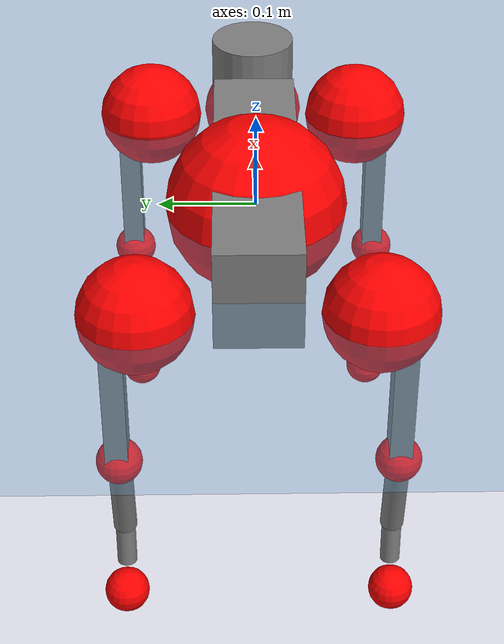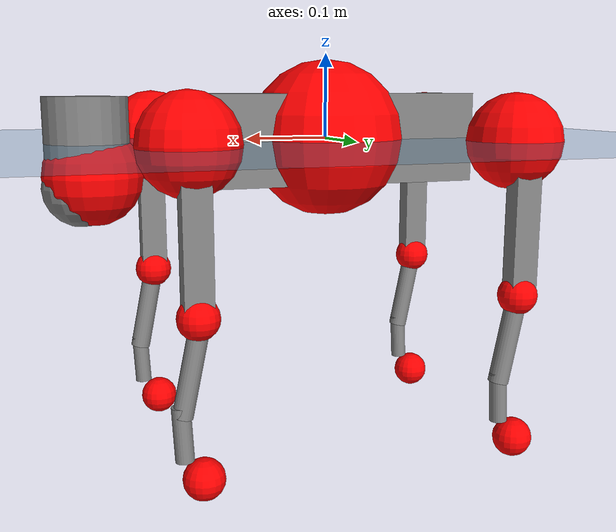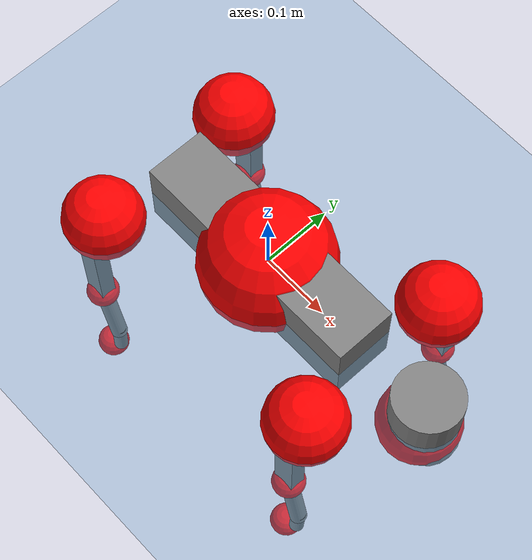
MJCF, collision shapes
<mujoco model="go2">
  <compiler angle="radian" assetdir="assets" balanceinertia="true" inertiafromgeom="false"/>

  <option timestep="0.005" density="1.2" viscosity="2e-05"/>

  <size nkey="1"/>

  <visual>
    <quality shadowsize="8192"/>
    <map shadowclip="0.5"/>
  </visual>

  <default>
    <default class="/">
      <geom contype="0" conaffinity="0" group="1" solref="-1000 -80"/>
      <site size="0.01 0.005 0.005" group="5"/>
      <general forcelimited="true" biastype="affine" gainprm="20" biasprm="0 -20 -0.5"/>
      <default class="go2">
        <joint armature="0.01" damping="0.01" frictionloss="0.2"/>
        <geom condim="1" margin="0.001"/>
        <default class="visual">
          <geom type="mesh" group="2"/>
        </default>
        <default class="collision">
          <geom group="3"/>
          <default class="foot">
            <geom size="0.022 0 0" condim="6" priority="1" friction="0.8 0.02 0.01" solimp="0.015 1 0.022"/>
          </default>
        </default>
        <default class="reward_collision_sphere">
          <geom group="5" rgba="1 0 0 1"/>
        </default>
      </default>
    </default>
  </default>

  <asset>
    <texture type="skybox" colorspace="auto" name="//unnamed_texture_0" builtin="gradient" rgb1="0.95 0.95 0.95" rgb2="0.95 0.95 0.95" width="100" height="600"/>
    <texture type="2d" colorspace="auto" name="texplane" builtin="checker" rgb1="0.345 0.575 0.748" rgb2="0.345 0.575 0.748" markrgb="1 1 1" width="512" height="512"/>
    <material name="MatPlane" class="/" texture="texplane" texuniform="true" texrepeat="2 2" specular="0.9"/>
    <material name="metal" class="/" rgba="0.9 0.95 0.95 1"/>
    <material name="black" class="/" rgba="0 0 0 1"/>
    <material name="white" class="/"/>
    <material name="gray" class="/" rgba="0.671705 0.692426 0.77427 1"/>
    <mesh name="base_0" class="/" file="base_0.obj"/>
    <mesh name="base_1" class="/" file="base_1.obj"/>
    <mesh name="base_2" class="/" file="base_2.obj"/>
    <mesh name="base_3" class="/" file="base_3.obj"/>
    <mesh name="base_4" class="/" file="base_4.obj"/>
    <mesh name="hip_0" class="/" file="hip_0.obj"/>
    <mesh name="hip_1" class="/" file="hip_1.obj"/>
    <mesh name="thigh_0" class="/" file="thigh_0.obj"/>
    <mesh name="thigh_1" class="/" file="thigh_1.obj"/>
    <mesh name="thigh_mirror_0" class="/" file="thigh_mirror_0.obj"/>
    <mesh name="thigh_mirror_1" class="/" file="thigh_mirror_1.obj"/>
    <mesh name="calf_0" class="/" file="calf_0.obj"/>
    <mesh name="calf_1" class="/" file="calf_1.obj"/>
    <mesh name="calf_mirror_0" class="/" file="calf_mirror_0.obj"/>
    <mesh name="calf_mirror_1" class="/" file="calf_mirror_1.obj"/>
    <mesh name="foot" class="/" file="foot.obj"/>
  </asset>

  <worldbody>
    <geom name="floor" class="/" size="100 100 0.125" type="plane" group="0" material="MatPlane"/>
    <light name="toplight_shadow" class="/" pos="0 0 5" dir="0.0990148 0.0990148 -0.990148" type="directional" ambient="0.04 0.04 0.04" diffuse="0.55 0.55 0.55" specular="0.12 0.12 0.12"/>
    <light name="toplight_fill" class="/" pos="0 0 5" dir="0.0990148 0.0990148 -0.990148" type="directional" castshadow="false" ambient="0.04 0.04 0.04" diffuse="0.3 0.3 0.3" specular="0.08 0.08 0.08"/>
    <body name="trunk" childclass="go2" pos="-0.000359462 -4.78745e-05 -0.000154336" quat="1 0.000119791 -0.000209102 -0.000210115">
      <inertial pos="0.0197455 0.000113318 -0.00414367" quat="0.000185765 0.71472 -0.00311695 0.699404" mass="5.72912" diaginertia="0.103413 0.089684 0.010027"/>
      <joint name="//unnamed_joint_0" type="free" armature="0" damping="0" frictionloss="0"/>
      <geom name="//unnamed_geom_1" class="visual" material="black" mesh="base_0"/>
      <geom name="//unnamed_geom_2" class="visual" material="black" mesh="base_1"/>
      <geom name="//unnamed_geom_3" class="visual" material="black" mesh="base_2"/>
      <geom name="//unnamed_geom_4" class="visual" material="white" mesh="base_3"/>
      <geom name="//unnamed_geom_5" class="visual" material="gray" mesh="base_4"/>
      <geom name="trunk_1" class="collision" size="0.176446 0.0438536 0.0534685" type="box"/>
      <geom name="trunk_2" class="collision" size="0.0469022 0.042212" pos="0.283379 0 0.00836328" type="cylinder"/>
      <geom name="trunk_3" class="collision" size="0.0440881" pos="0.291333 0 -0.0501797"/>
      <geom name="//unnamed_geom_9" class="reward_collision_sphere" size="0.0938044"/>
      <geom name="//unnamed_geom_10" class="reward_collision_sphere" size="0.0562827" pos="0.278407 0 -0.0376347"/>
      <site name="imu" pos="-0.0235272 -0.000268027 0.0336051" size="0.00938044"/>
      <camera name="track" pos="0 -1.96699 0" quat="0.707107 0.707107 0 0" mode="trackcom"/>
      <camera name="ego_camera" pos="0.310225 0 0.0376347" quat="-0.5 -0.5 0.5 0.5"/>
      <body name="FL_hip" pos="0.192471 0.0467015 0.00258835" quat="1 -1.5104e-05 3.95139e-05 -0.000176545">
        <inertial pos="-0.00534001 0.00280133 0.000128637" quat="0.497178 0.499265 0.505483 0.498032" mass="0.546153" diaginertia="0.00084955 0.000543448 0.000193891"/>
        <joint name="FL_hip_joint" pos="0 0 0" axis="0.999999 -0.001209 -0.000814013" stiffness="0.00168637" range="-1.04916 1.03997" armature="0.00929281" damping="0.00227315" frictionloss="0.195711"/>
        <geom name="//unnamed_geom_11" class="visual" material="metal" mesh="hip_0"/>
        <geom name="//unnamed_geom_12" class="visual" material="gray" mesh="hip_1"/>
        <geom name="//unnamed_geom_13" class="collision" size="0.04315 0.0187609" pos="0 0.0786795 0" quat="0.707107 0.707107 0 0" type="cylinder"/>
        <geom name="//unnamed_geom_14" class="reward_collision_sphere" size="0.0562827" pos="0 0.0688446 0"/>
        <body name="FL_thigh" pos="0.000367463 0.0944638 0.000979422" quat="1 8.94575e-05 -5.69526e-05 1.9223e-06">
          <inertial pos="-0.00404456 -0.0217847 -0.028081" quat="0.828631 0.0870449 -0.0197073 0.552635" mass="0.962464" diaginertia="0.00579205 0.0053297 0.000360969"/>
          <joint name="FL_thigh_joint" pos="0 0 0" axis="0.00592065 0.999969 -0.00516599" stiffness="0.00471887" range="-1.5681 3.47556" armature="0.00918528" damping="0.00473079" frictionloss="0.196101"/>
          <geom name="//unnamed_geom_15" class="visual" material="metal" mesh="thigh_0"/>
          <geom name="//unnamed_geom_16" class="visual" material="gray" mesh="thigh_1"/>
          <geom name="//unnamed_geom_17" class="collision" size="0.0999017 0.011491 0.0159468" pos="0 0 -0.0890689" quat="0.707107 0 0.707107 0" type="box"/>
          <body name="FL_calf" pos="-0.000640425 -0.000655514 -0.17847" quat="1 -0.000143714 0.000145629 1.85527e-05">
            <inertial pos="0.00616263 -5.93134e-06 -0.116801" quat="0.711276 0.00153074 -0.00444308 0.702897" mass="0.198021" diaginertia="0.0014448 0.00133704 2.17509e-05"/>
            <joint name="FL_calf_joint" pos="0 0 0" axis="0.000990061 0.999994 0.00330863" range="-2.74264 -0.832698" armature="0.00936126" damping="0.00109497" frictionloss="0.189675"/>
            <geom name="//unnamed_geom_18" class="visual" material="gray" mesh="calf_0"/>
            <geom name="//unnamed_geom_19" class="visual" material="black" mesh="calf_1"/>
            <geom name="FL_calf0" class="collision" size="0.0112565 0.0562827" pos="0.00795449 0 -0.0501797" quat="0.994493 0 -0.104807 0" type="cylinder"/>
            <geom name="//unnamed_geom_21" class="collision" size="0.0103185 0.0304864" pos="0.0198862 0 -0.123777" quat="0.999688 0 0.0249974 0" type="cylinder"/>
            <geom name="//unnamed_geom_22" class="visual" pos="0 0 -0.178138" quat="1 0 0 0" material="black" mesh="foot"/>
            <geom name="FL_foot" class="foot" size="0.0184055" pos="-0.00198862 0 -0.178138"/>
            <geom name="//unnamed_geom_24" class="reward_collision_sphere" size="0.0234511"/>
            <geom name="//unnamed_geom_25" class="reward_collision_sphere" size="0.0234511" pos="-0.00198862 0 -0.178138"/>
            <site name="FL_foot" class="foot" pos="-0.00198862 0 -0.178138" size="0.00938044"/>
          </body>
        </body>
      </body>
      <body name="FR_hip" pos="0.192663 -0.0458672 0.000541098" quat="1 -5.09793e-07 -0.000148621 -5.3463e-05">
        <inertial pos="-0.0042912 -0.00299232 0.000557323" quat="0.496441 0.506973 0.501716 0.494778" mass="0.564476" diaginertia="0.000868703 0.000553513 0.000198979"/>
        <joint name="FR_hip_joint" pos="0 0 0" axis="0.999999 -0.000987169 -0.000743494" range="-1.03986 1.04725" armature="0.00946124" damping="0.0134625" frictionloss="0.185081"/>
        <geom name="//unnamed_geom_26" class="visual" pos="0 1.28205e-09 5.49898e-08" quat="4.63268e-05 1 0 0" material="metal" mesh="hip_0"/>
        <geom name="//unnamed_geom_27" class="visual" pos="0 2.07836e-09 -1.36011e-07" quat="4.63268e-05 1 0 0" material="gray" mesh="hip_1"/>
        <geom name="//unnamed_geom_28" class="collision" size="0.04315 0.0187609" pos="0 -0.0786795 0" quat="0.707107 0.707107 0 0" type="cylinder"/>
        <geom name="//unnamed_geom_29" class="reward_collision_sphere" size="0.0562827" pos="0 -0.0688446 0"/>
        <body name="FR_thigh" pos="-0.000427853 -0.0935942 0.000266461" quat="1 2.36253e-05 -6.11134e-06 -3.70997e-05">
          <inertial pos="-0.00297482 0.0219956 -0.0262907" quat="0.555131 -0.0204689 0.0862502 0.827026" mass="0.939077" diaginertia="0.00581151 0.00536064 0.000359148"/>
          <joint name="FR_thigh_joint" pos="0 0 0" axis="-0.000407331 -0.999997 -0.00229288" stiffness="0.000252763" range="-3.49353 1.55993" armature="0.00976851" damping="0.0155908" frictionloss="0.182701"/>
          <geom name="//unnamed_geom_30" class="visual" material="metal" mesh="thigh_mirror_0"/>
          <geom name="//unnamed_geom_31" class="visual" material="gray" mesh="thigh_mirror_1"/>
          <geom name="//unnamed_geom_32" class="collision" size="0.0999017 0.011491 0.0159468" pos="0 0 -0.0890689" quat="0.707107 0 0.707107 0" type="box"/>
          <body name="FR_calf" pos="0.000595057 -0.0012235 -0.178109" quat="1 -0.000198471 -0.000328965 0.000281182">
            <inertial pos="0.00689373 0.000719344 -0.118523" quat="0.705771 -0.00527392 -0.000232694 0.70842" mass="0.195679" diaginertia="0.00143012 0.00134935 2.15742e-05"/>
            <joint name="FR_calf_joint" pos="0 0 0" axis="0.00376022 -0.999991 0.00214071" range="0.827043 2.74024" armature="0.00915842" damping="0.0112247" frictionloss="0.181565"/>
            <geom name="//unnamed_geom_33" class="visual" material="gray" mesh="calf_mirror_0"/>
            <geom name="//unnamed_geom_34" class="visual" material="black" mesh="calf_mirror_1"/>
            <geom name="FR_calf0" class="collision" size="0.0121946 0.0562827" pos="0.00994311 0 -0.0501797" quat="0.995004 0 -0.0998334 0" type="cylinder"/>
            <geom name="//unnamed_geom_36" class="collision" size="0.0103185 0.0304864" pos="0.0198862 0 -0.123777" quat="0.999688 0 0.0249974 0" type="cylinder"/>
            <geom name="//unnamed_geom_37" class="visual" pos="0 0 -0.178138" quat="1 0 0 0" material="black" mesh="foot"/>
            <geom name="FR_foot" class="foot" size="0.0216648" pos="-0.00198862 0 -0.178138"/>
            <geom name="//unnamed_geom_39" class="reward_collision_sphere" size="0.0234511"/>
            <geom name="//unnamed_geom_40" class="reward_collision_sphere" size="0.0234511" pos="-0.00198862 0 -0.178138"/>
            <site name="FR_foot" class="foot" pos="-0.00198862 0 -0.178138" size="0.00938044"/>
          </body>
        </body>
      </body>
      <body name="RL_hip" pos="-0.192346 0.0465718 -0.0010878" quat="1 4.96354e-05 -1.72046e-05 1.69421e-06">
        <inertial pos="0.00521938 0.0013906 -0.00134493" quat="0.507078 0.496668 0.497028 0.499156" mass="0.562896" diaginertia="0.000877835 0.000548688 0.000199839"/>
        <joint name="RL_hip_joint" pos="0 0 0" axis="-0.9998 -0.0140681 0.0142189" stiffness="0.00357662" range="-1.05144 1.04619" armature="0.00939015" damping="0.00572491" frictionloss="0.186873"/>
        <geom name="//unnamed_geom_41" class="visual" pos="-1.37628e-09 0 -2.69783e-07" quat="4.63268e-05 0 1 0" material="metal" mesh="hip_0"/>
        <geom name="//unnamed_geom_42" class="visual" pos="-2.23112e-09 0 -2.3926e-07" quat="4.63268e-05 0 1 0" material="gray" mesh="hip_1"/>
        <geom name="//unnamed_geom_43" class="collision" size="0.04315 0.0187609" pos="0 0.0786795 0" quat="0.707107 0.707107 0 0" type="cylinder"/>
        <geom name="//unnamed_geom_44" class="reward_collision_sphere" size="0.0562827" pos="0 0.0688446 0"/>
        <body name="RL_thigh" pos="0.000269547 0.0937695 -0.00128089" quat="1 -2.11842e-05 -0.000117172 0.000192327">
          <inertial pos="-0.00469769 -0.0219336 -0.0280349" quat="0.829463 0.0840431 -0.0205469 0.55182" mass="0.96573" diaginertia="0.00577232 0.00537391 0.000361769"/>
          <joint name="RL_thigh_joint" pos="0 0 0" axis="0.0037282 0.999993 -0.000476695" stiffness="0.00411653" range="-0.506907 4.5559" armature="0.00962062" damping="0.00920243" frictionloss="0.186617"/>
          <geom name="//unnamed_geom_45" class="visual" material="metal" mesh="thigh_0"/>
          <geom name="//unnamed_geom_46" class="visual" material="gray" mesh="thigh_1"/>
          <geom name="//unnamed_geom_47" class="collision" size="0.0999017 0.011491 0.0159468" pos="0 0 -0.0890689" quat="0.707107 0 0.707107 0" type="box"/>
          <body name="RL_calf" pos="0.00105833 -0.00135713 -0.17839" quat="1 0.000199416 -5.67067e-05 9.73375e-05">
            <inertial pos="0.00544409 -0.000336181 -0.118113" quat="0.708446 0.00338486 -0.00184163 0.705755" mass="0.201898" diaginertia="0.00148454 0.00136464 2.20818e-05"/>
            <joint name="RL_calf_joint" pos="0 0 0" axis="-0.00245444 0.999975 0.00665245" range="-2.72394 -0.821706" armature="0.00956721" damping="0.00110415" frictionloss="0.190656"/>
            <geom name="//unnamed_geom_48" class="visual" material="gray" mesh="calf_0"/>
            <geom name="//unnamed_geom_49" class="visual" material="black" mesh="calf_1"/>
            <geom name="RL_calf0" class="collision" size="0.0121946 0.0562827" pos="0.00994311 0 -0.0501797" quat="0.995004 0 -0.0998334 0" type="cylinder"/>
            <geom name="//unnamed_geom_51" class="collision" size="0.0103185 0.0304864" pos="0.0198862 0 -0.123777" quat="0.999688 0 0.0249974 0" type="cylinder"/>
            <geom name="//unnamed_geom_52" class="visual" pos="0 0 -0.178138" quat="1 0 0 0" material="black" mesh="foot"/>
            <geom name="RL_foot" class="foot" size="0.0181673" pos="-0.00198862 0 -0.178138"/>
            <geom name="//unnamed_geom_54" class="reward_collision_sphere" size="0.0234511"/>
            <geom name="//unnamed_geom_55" class="reward_collision_sphere" size="0.0234511" pos="-0.00198862 0 -0.178138"/>
            <site name="RL_foot" class="foot" pos="-0.00198862 0 -0.178138" size="0.00938044"/>
          </body>
        </body>
      </body>
      <body name="RR_hip" pos="-0.191213 -0.045477 -0.00187026" quat="1 -8.11521e-05 9.97022e-05 0.000221358">
        <inertial pos="0.00616541 -0.0027742 -0.000532047" quat="0.497129 0.49493 0.497122 0.510663" mass="0.550648" diaginertia="0.000849022 0.000543102 0.000193686"/>
        <joint name="RR_hip_joint" pos="0 0 0" axis="-0.999997 -0.000984707 -0.00215962" range="-1.04758 1.03144" armature="0.00961691" damping="0.00810296" frictionloss="0.187828"/>
        <geom name="//unnamed_geom_56" class="visual" pos="1.37591e-09 1.28205e-09 -3.24773e-07" quat="2.14617e-09 4.63268e-05 4.63268e-05 -1" material="metal" mesh="hip_0"/>
        <geom name="//unnamed_geom_57" class="visual" pos="2.23205e-09 2.07836e-09 -1.03249e-07" quat="2.14617e-09 4.63268e-05 4.63268e-05 -1" material="gray" mesh="hip_1"/>
        <geom name="//unnamed_geom_58" class="collision" size="0.04315 0.0187609" pos="0 -0.0786795 0" quat="0.707107 0.707107 0 0" type="cylinder"/>
        <geom name="//unnamed_geom_59" class="reward_collision_sphere" size="0.0562827" pos="0 -0.0688446 0"/>
        <body name="RR_thigh" pos="0.000884058 -0.0944698 -0.0013981" quat="1 -9.85837e-05 2.6507e-05 -3.61749e-06">
          <inertial pos="-0.00336726 0.0211062 -0.0269902" quat="0.551631 -0.0200593 0.0847603 0.829528" mass="0.969237" diaginertia="0.0058921 0.00545068 0.000362733"/>
          <joint name="RR_thigh_joint" pos="0 0 0" axis="-0.00295809 -0.999975 0.00643333" range="-4.55668 0.520982" armature="0.009161" damping="0.0129049" frictionloss="0.188485"/>
          <geom name="//unnamed_geom_60" class="visual" material="metal" mesh="thigh_mirror_0"/>
          <geom name="//unnamed_geom_61" class="visual" material="gray" mesh="thigh_mirror_1"/>
          <geom name="//unnamed_geom_62" class="collision" size="0.0999017 0.011491 0.0159468" pos="0 0 -0.0890689" quat="0.707107 0 0.707107 0" type="box"/>
          <body name="RR_calf" pos="0.00026535 0.00018697 -0.178906" quat="1 -0.000117505 -7.58957e-05 2.82772e-05">
            <inertial pos="0.00569098 0.00129677 -0.118121" quat="0.704558 -0.00254372 0.00303095 0.709636" mass="0.199404" diaginertia="0.00146064 0.00134601 2.19481e-05"/>
            <joint name="RR_calf_joint" pos="0 0 0" axis="-0.000488919 -0.999999 -0.00134171" range="0.831903 2.73042" armature="0.009434" damping="0.0106983" frictionloss="0.181814"/>
            <geom name="//unnamed_geom_63" class="visual" material="gray" mesh="calf_mirror_0"/>
            <geom name="//unnamed_geom_64" class="visual" material="black" mesh="calf_mirror_1"/>
            <geom name="RR_calf0" class="collision" size="0.0121946 0.0562827" pos="0.00994311 0 -0.0501797" quat="0.995004 0 -0.0998334 0" type="cylinder"/>
            <geom name="//unnamed_geom_66" class="collision" size="0.0103185 0.0304864" pos="0.0198862 0 -0.123777" quat="0.999688 0 0.0249974 0" type="cylinder"/>
            <geom name="//unnamed_geom_67" class="visual" pos="0 0 -0.178138" quat="1 0 0 0" material="black" mesh="foot"/>
            <geom name="RR_foot" class="foot" size="0.0223384" pos="-0.00198862 0 -0.178138"/>
            <geom name="//unnamed_geom_69" class="reward_collision_sphere" size="0.0234511"/>
            <geom name="//unnamed_geom_70" class="reward_collision_sphere" size="0.0234511" pos="-0.00198862 0 -0.178138"/>
            <site name="RR_foot" class="foot" pos="-0.00198862 0 -0.178138" size="0.00938044"/>
          </body>
        </body>
      </body>
    </body>
  </worldbody>

  <contact>
    <pair class="/" geom1="floor" geom2="FL_foot" name="//unnamed_contact_0"/>
    <pair class="/" geom1="floor" geom2="FR_foot" name="//unnamed_contact_1"/>
    <pair class="/" geom1="floor" geom2="RL_foot" name="//unnamed_contact_2"/>
    <pair class="/" geom1="floor" geom2="RR_foot" name="//unnamed_contact_3"/>
  </contact>

  <actuator>
    <general name="FL_hip" class="/" joint="FL_hip_joint" forcerange="-22.6357 22.6357" gainprm="19.2672" biasprm="0 -19.2672 -0.481125"/>
    <general name="FL_thigh" class="/" joint="FL_thigh_joint" forcerange="-21.7916 21.7916" gainprm="19.2672" biasprm="0 -19.2672 -0.481125"/>
    <general name="FL_calf" class="/" joint="FL_calf_joint" forcerange="-42.717 42.717" gainprm="19.2672" biasprm="0 -19.2672 -0.481125"/>
    <general name="FR_hip" class="/" joint="FR_hip_joint" forcerange="-22.2087 22.2087" gainprm="19.2672" biasprm="0 -19.2672 -0.481125"/>
    <general name="FR_thigh" class="/" joint="FR_thigh_joint" forcerange="-21.5326 21.5326" gainprm="19.2672" biasprm="0 -19.2672 -0.481125"/>
    <general name="FR_calf" class="/" joint="FR_calf_joint" forcerange="-41.5814 41.5814" gainprm="19.2672" biasprm="0 -19.2672 -0.481125"/>
    <general name="RL_hip" class="/" joint="RL_hip_joint" forcerange="-22.2454 22.2454" gainprm="19.2672" biasprm="0 -19.2672 -0.481125"/>
    <general name="RL_thigh" class="/" joint="RL_thigh_joint" forcerange="-22.8733 22.8733" gainprm="19.2672" biasprm="0 -19.2672 -0.481125"/>
    <general name="RL_calf" class="/" joint="RL_calf_joint" forcerange="-42.0287 42.0287" gainprm="19.2672" biasprm="0 -19.2672 -0.481125"/>
    <general name="RR_hip" class="/" joint="RR_hip_joint" forcerange="-22.0278 22.0278" gainprm="19.2672" biasprm="0 -19.2672 -0.481125"/>
    <general name="RR_thigh" class="/" joint="RR_thigh_joint" forcerange="-22.1303 22.1303" gainprm="19.2672" biasprm="0 -19.2672 -0.481125"/>
    <general name="RR_calf" class="/" joint="RR_calf_joint" forcerange="-43.2069 43.2069" gainprm="19.2672" biasprm="0 -19.2672 -0.481125"/>
  </actuator>

  <sensor>
    <gyro site="imu" name="imu_angular_velocity"/>
    <velocimeter site="imu" name="imu_linear_velocity"/>
    <framelinvel objtype="site" objname="FL_foot" name="FL_foot_global_linear_velocity"/>
    <framelinvel objtype="site" objname="FR_foot" name="FR_foot_global_linear_velocity"/>
    <framelinvel objtype="site" objname="RL_foot" name="RL_foot_global_linear_velocity"/>
    <framelinvel objtype="site" objname="RR_foot" name="RR_foot_global_linear_velocity"/>
  </sensor>

  <keyframe>
    <key name="home" qpos="0 0 0.325 1 0 0 0 0.1 0.8 -1.5 -0.1 -0.8 1.5 -0.1 0.8 -1.5 0.1 -0.8 1.5"/>
  </keyframe>
</mujoco>
